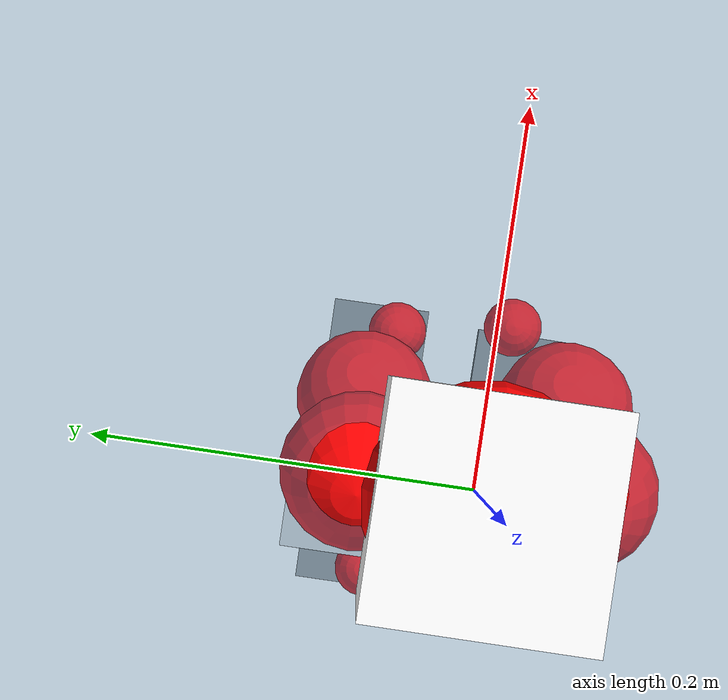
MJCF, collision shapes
<mujoco model="pi_12dof_release_v1">
  <compiler angle="radian" assetdir="assets" balanceinertia="true" inertiafromgeom="false"/>

  <option timestep="0.005" density="1.2" viscosity="2e-05"/>

  <size nkey="1"/>

  <visual>
    <quality shadowsize="8192"/>
    <map shadowclip="0.5"/>
  </visual>

  <default>
    <default class="/">
      <joint armature="0.01" damping="0.01" frictionloss="0.01"/>
      <geom contype="0" conaffinity="0" group="1" solref="-1000 -80"/>
      <site size="0.01 0.005 0.005" group="5"/>
      <general forcelimited="true" biastype="affine" gainprm="20" biasprm="0 -20 -0.5"/>
      <default class="foot">
        <geom size="0.0845 0.036 0.005" type="box" condim="6" group="4" priority="1" friction="0.9 0.2 0.2" solimp="0.015 1 0.005"/>
      </default>
      <default class="reward_collision_sphere">
        <geom group="5" rgba="1 0 0 1"/>
      </default>
    </default>
  </default>

  <asset>
    <texture type="skybox" colorspace="auto" name="//unnamed_texture_0" builtin="gradient" rgb1="0.95 0.95 0.95" rgb2="0.95 0.95 0.95" width="100" height="600"/>
    <texture type="2d" colorspace="auto" name="texplane" builtin="checker" rgb1="0.345 0.575 0.748" rgb2="0.345 0.575 0.748" markrgb="1 1 1" width="512" height="512"/>
    <material name="MatPlane" class="/" texture="texplane" texuniform="true" texrepeat="2 2" specular="0.9"/>
    <mesh name="baselink_1" class="/" file="baselink_1.STL"/>
    <mesh name="r_hip_pitch_link" class="/" file="r_hip_pitch_link.STL"/>
    <mesh name="r_hip_roll_link" class="/" file="r_hip_roll_link.STL"/>
    <mesh name="r_thigh_link" class="/" file="r_thigh_link.STL"/>
    <mesh name="r_calf_link" class="/" file="r_calf_link.STL"/>
    <mesh name="r_ankle_pitch_link" class="/" file="r_ankle_pitch_link.STL"/>
    <mesh name="r_ankle_roll_link" class="/" file="r_ankle_roll_link.STL"/>
    <mesh name="l_hip_pitch_link" class="/" file="l_hip_pitch_link.STL"/>
    <mesh name="l_hip_roll_link" class="/" file="l_hip_roll_link.STL"/>
    <mesh name="l_thigh_link" class="/" file="l_thigh_link.STL"/>
    <mesh name="l_calf_link" class="/" file="l_calf_link.STL"/>
    <mesh name="l_ankle_pitch_link" class="/" file="l_ankle_pitch_link.STL"/>
    <mesh name="l_ankle_roll_link" class="/" file="l_ankle_roll_link.STL"/>
  </asset>

  <worldbody>
    <geom name="floor" class="/" size="100 100 0.125" type="plane" group="0" material="MatPlane"/>
    <light name="toplight_shadow" class="/" pos="0 0 5" dir="0.0990148 0.0990148 -0.990148" type="directional" ambient="0.04 0.04 0.04" diffuse="0.55 0.55 0.55" specular="0.12 0.12 0.12"/>
    <light name="toplight_fill" class="/" pos="0 0 5" dir="0.0990148 0.0990148 -0.990148" type="directional" castshadow="false" ambient="0.04 0.04 0.04" diffuse="0.3 0.3 0.3" specular="0.08 0.08 0.08"/>
    <body name="trunk" pos="-0.00119052 -0.000567122 0.000251659" quat="1 -0.000103054 9.57222e-05 -0.000367871">
      <inertial pos="0.0120482 0.00559996 0.0495546" quat="0.692293 0.00512289 0.0139292 0.721464" mass="2.50115" diaginertia="0.0392387 0.00156298 0.0113449"/>
      <joint name="//unnamed_joint_0" type="free"/>
      <geom name="//unnamed_geom_1" class="/" type="mesh" density="0" rgba="1 1 1 1" mesh="baselink_1"/>
      <geom name="//unnamed_geom_2" class="/" size="0.053803 0.053803 0.053803" pos="0 0 0.0968652" type="box" rgba="1 1 1 1"/>
      <geom name="//unnamed_geom_3" class="reward_collision_sphere" size="0.0591833" pos="0 0 0.0847571"/>
      <site name="imu" class="/" pos="-0.0347348 0.000246524 0.0344665" size="0.0107606"/>
      <camera name="track" class="/" pos="0 -1.40551 0" quat="0.707107 0.707107 0 0" mode="trackcom"/>
      <camera name="ego_camera" class="/" pos="0.0985958 0 0.217947" quat="-0.5 -0.5 0.5 0.5"/>
      <body name="r_hip_pitch_link" pos="0.00405742 -0.0110731 -0.0378737" quat="0.992199 -2.67993e-05 -0.124662 -9.97897e-06">
        <inertial pos="0.000770464 -0.0348178 -0.000356595" quat="-0.0163194 0.706445 -0.029988 0.706944" mass="0.502432" diaginertia="0.000477959 1.98241e-05 0.00023804"/>
        <joint name="r_hip_pitch_joint" class="/" pos="0 0 0" axis="-0.00350509 -0.999927 -0.0115341" range="-1.69538 1.40038" armature="0.0137352" damping="0.0154005" frictionloss="0.0110358"/>
        <geom name="//unnamed_geom_4" class="/" type="mesh" density="0" rgba="0.75294 0.75294 0.75294 1" mesh="r_hip_pitch_link"/>
        <geom name="//unnamed_geom_5" class="/" size="0.00053803 0.00053803 0.00053803" type="box" rgba="0.75294 0.75294 0.75294 1"/>
        <body name="r_hip_roll_link" pos="0.00208158 -0.0473995 -0.000829344" quat="0.999995 -0.00295255 0.000572347 -0.0012244">
          <inertial pos="0.00163957 -0.000112475 -0.0761047" quat="0.718632 -0.0732415 -0.0936187 0.685156" mass="0.492254" diaginertia="0.0012877 5.11533e-05 0.000328393"/>
          <joint name="r_hip_roll_joint" class="/" pos="0 0 0" axis="-0.999797 -0.00984754 -0.0175825" range="-0.0741875 0.50731" armature="0.0122404" damping="0.0407313" frictionloss="0.00679902"/>
          <geom name="//unnamed_geom_6" class="/" type="mesh" density="0" rgba="0.75294 0.75294 0.75294 1" mesh="r_hip_roll_link"/>
          <geom name="//unnamed_geom_7" class="/" size="0.00053803 0.00053803 0.00053803" type="box" rgba="0.75294 0.75294 0.75294 1"/>
          <geom name="//unnamed_geom_8" class="reward_collision_sphere" size="0.0430424"/>
          <body name="r_thigh_link" pos="-0.00559617 -0.00604859 -0.0795526" quat="1 -0.000194079 0.00076855 -6.74569e-05">
            <inertial pos="0.00216882 0.00308789 -0.056584" quat="0.735588 0.677415 -0.00405291 -0.00180689" mass="0.13728" diaginertia="0.000510551 1.62665e-05 0.000150194"/>
            <joint name="r_thigh_joint" class="/" pos="0 0 0" axis="0.000797712 0.00546827 -0.999985" range="-0.227112 0.538568" armature="0.00655768" damping="0" frictionloss="0.0100186"/>
            <geom name="//unnamed_geom_9" class="/" type="mesh" density="0" rgba="0.75294 0.75294 0.75294 1" mesh="r_thigh_link"/>
            <geom name="//unnamed_geom_10" class="/" size="0.00053803 0.00053803 0.00053803" type="box" rgba="0.75294 0.75294 0.75294 1"/>
            <body name="r_calf_link" pos="0.00716273 0.00231586 -0.0838415" quat="0.947604 -0.000289637 0.319448 -0.000313709">
              <inertial pos="0.00228891 0.00834306 -0.0814528" quat="0.999023 0.00735342 0.00330792 0.043459" mass="1.01163" diaginertia="0.0150046 0.000562349 0.000489797"/>
              <joint name="r_calf_joint" class="/" pos="0 0 0" axis="0.00977329 -0.999819 -0.0163128" stiffness="0.0069704" range="-1.64574 0.639403" armature="0.0114644" damping="0" frictionloss="0.0118836"/>
              <geom name="//unnamed_geom_11" class="/" type="mesh" density="0" rgba="0.75294 0.75294 0.75294 1" mesh="r_calf_link"/>
              <geom name="//unnamed_geom_12" class="/" size="0.00053803 0.00053803 0.00053803" type="box" rgba="0.75294 0.75294 0.75294 1"/>
              <geom name="//unnamed_geom_13" class="reward_collision_sphere" size="0.0430424"/>
              <body name="r_ankle_pitch_link" pos="-0.00311245 0.00289449 -0.164334" quat="0.97978 0.00222111 -0.200063 0.000469977">
                <inertial pos="-0.000907766 0.00196522 0.00196122" quat="-0.00188038 0.711764 -0.0106153 0.702336" mass="0.201898" diaginertia="0.00122148 3.96067e-05 0.000278074"/>
                <joint name="r_ankle_pitch_joint" class="/" pos="0 0 0" axis="-0.0131695 -0.999861 -0.0102266" stiffness="0.0166515" range="-1.41877 0.439198" armature="0.00938148" damping="0.0329446" frictionloss="0.00960319"/>
                <geom name="//unnamed_geom_14" class="/" type="mesh" density="0" rgba="0.75294 0.75294 0.75294 1" mesh="r_ankle_pitch_link"/>
                <geom name="//unnamed_geom_15" class="/" size="0.0419664 0.0430424 0.0269015" type="box" rgba="0.75294 0.75294 0.75294 1"/>
                <body name="r_ankle_roll_link" pos="0.100878 0.00725203 3.89891e-05" quat="0.999999 0.000255226 -0.000746478 -0.000710527">
                  <inertial pos="-0.0270679 3.38781e-05 -0.0184849" quat="0.574401 0.399986 0.422916 0.575514" mass="0.592093" diaginertia="0.00416652 0.000168472 0.000693993"/>
                  <joint name="r_ankle_roll_joint" class="/" pos="0 0 0" axis="-0.999962 -0.00598948 -0.00635226" range="-0.211974 0.181356" armature="0.00675945" damping="0" frictionloss="0.0113688"/>
                  <geom name="//unnamed_geom_16" class="/" type="mesh" density="0" rgba="0.75294 0.75294 0.75294 1" mesh="r_ankle_roll_link"/>
                  <geom name="//unnamed_geom_17" class="/" type="mesh" rgba="0.75294 0.75294 0.75294 1" mesh="r_ankle_roll_link"/>
                  <geom name="right_foot" class="foot" size="0.0818149 0.0386851 0.00521401" pos="-0.0670451 0 -0.0532759"/>
                  <geom name="//unnamed_geom_19" class="reward_collision_sphere" size="0.0430424" pos="-0.0657305 0 -0.0242163"/>
                  <geom name="//unnamed_geom_20" class="reward_collision_sphere" size="0.0215212" pos="0.0197192 0.0140551 -0.0484326"/>
                  <geom name="//unnamed_geom_21" class="reward_collision_sphere" size="0.0215212" pos="-0.157753 0.0140551 -0.0484326"/>
                  <site name="right_foot" class="foot" pos="-0.0670451 0 -0.0532759" size="0.0107606"/>
                </body>
              </body>
            </body>
          </body>
        </body>
      </body>
      <body name="l_hip_pitch_link" pos="-0.00593805 0.0201629 -0.0339384" quat="0.992196 -0.000139068 -0.124689 0.000110467">
        <inertial pos="0.00169978 0.0347252 0.00738777" quat="-0.0294095 0.690269 0.0264773 0.72247" mass="0.442289" diaginertia="0.000405594 1.60511e-05 0.000243327"/>
        <joint name="l_hip_pitch_joint" class="/" pos="0 0 0" axis="0.00237548 0.999986 0.00472933" stiffness="0.0140848" range="-1.2034 1.76655" armature="0.0116598" damping="0" frictionloss="0.0124704"/>
        <geom name="//unnamed_geom_22" class="/" type="mesh" density="0" rgba="0.75294 0.75294 0.75294 1" mesh="l_hip_pitch_link"/>
        <geom name="//unnamed_geom_23" class="/" size="0.00053803 0.00053803 0.00053803" type="box" rgba="0.75294 0.75294 0.75294 1"/>
        <body name="l_hip_roll_link" pos="0.00633461 0.0403168 -0.00168346" quat="1 -8.73678e-06 3.4616e-05 0.00027641">
          <inertial pos="0.0062572 0.000599267 -0.0661038" quat="0.697669 -0.0739097 -0.0780815 0.708306" mass="0.508042" diaginertia="0.0015088 4.7505e-05 0.000349472"/>
          <joint name="l_hip_roll_joint" class="/" pos="0 0 0" axis="-0.999954 0.00701658 -0.00653941" range="-0.496007 0.077028" armature="0.0101535" damping="0" frictionloss="0.011862"/>
          <geom name="//unnamed_geom_24" class="/" type="mesh" density="0" rgba="0.75294 0.75294 0.75294 1" mesh="l_hip_roll_link"/>
          <geom name="//unnamed_geom_25" class="/" size="0.00053803 0.00053803 0.00053803" type="box" rgba="0.75294 0.75294 0.75294 1"/>
          <geom name="//unnamed_geom_26" class="reward_collision_sphere" size="0.0430424"/>
          <body name="l_thigh_link" pos="0.00261443 -0.00039531 -0.0845673" quat="1 0.000282299 7.84175e-05 0.000146702">
            <inertial pos="-0.00144782 -0.00688131 -0.0582831" quat="0.6765 0.73632 -0.0107245 0.00809998" mass="0.125691" diaginertia="0.0004533 1.33632e-05 0.000134959"/>
            <joint name="l_thigh_joint" class="/" pos="0 0 0" axis="-0.00376344 -0.00155037 -0.999992" stiffness="0.0266534" range="-0.455697 0.346877" armature="0.0109569" damping="0" frictionloss="0.0111884"/>
            <geom name="//unnamed_geom_27" class="/" type="mesh" density="0" rgba="0.75294 0.75294 0.75294 1" mesh="l_thigh_link"/>
            <geom name="//unnamed_geom_28" class="/" size="0.00053803 0.00053803 0.00053803" type="box" rgba="0.75294 0.75294 0.75294 1"/>
            <body name="l_calf_link" pos="-0.00881624 0.00216293 -0.0865688" quat="0.94711 -0.000237412 0.320908 -0.000138181">
              <inertial pos="0.00261971 0.000630358 -0.076943" quat="0.998834 -0.00323019 -0.038685 0.0287027" mass="1.0487" diaginertia="0.0151724 0.000670039 0.000506881"/>
              <joint name="l_calf_joint" class="/" pos="0 0 0" axis="0.0129379 0.999698 -0.0209081" stiffness="0.00355353" range="-0.654225 1.65565" armature="0.0104028" damping="0.0264225" frictionloss="0.0107756"/>
              <geom name="//unnamed_geom_29" class="/" type="mesh" density="0" rgba="0.75294 0.75294 0.75294 1" mesh="l_calf_link"/>
              <geom name="//unnamed_geom_30" class="/" size="0.00053803 0.00053803 0.00053803" type="box" rgba="0.75294 0.75294 0.75294 1"/>
              <geom name="//unnamed_geom_31" class="reward_collision_sphere" size="0.0430424"/>
              <body name="l_ankle_pitch_link" pos="-0.0077016 0.000694413 -0.162923" quat="0.980501 0.000813353 -0.196511 0.00127984">
                <inertial pos="0.00752983 -0.0028244 0.00126389" quat="-0.000419647 0.708758 0.00298024 0.705445" mass="0.238526" diaginertia="0.00131595 3.82758e-05 0.000313873"/>
                <joint name="l_ankle_pitch_joint" class="/" pos="0 0 0" axis="-0.0036016 0.999977 0.00575939" range="-0.475254 1.36266" armature="0.012211" damping="0.00215332" frictionloss="0.010496"/>
                <geom name="//unnamed_geom_32" class="/" type="mesh" density="0" rgba="0.75294 0.75294 0.75294 1" mesh="l_ankle_pitch_link"/>
                <geom name="//unnamed_geom_33" class="/" size="0.0419664 0.0430424 0.0269015" type="box" rgba="0.75294 0.75294 0.75294 1"/>
                <body name="l_ankle_roll_link" pos="0.101289 -0.00476556 -0.00114273" quat="0.999994 -0.00316742 0.00122752 0.000599642">
                  <inertial pos="-0.0366925 0.000667142 -0.0168698" quat="0.563364 0.440242 0.415033 0.562633" mass="0.623706" diaginertia="0.00444328 0.000176423 0.000742986"/>
                  <joint name="l_ankle_roll_joint" class="/" pos="0 0 0" axis="-0.999999 0.00146362 0.000643817" stiffness="0.0330981" range="-0.26527 0.2202" armature="0.00795941" damping="0" frictionloss="0.0103143"/>
                  <geom name="//unnamed_geom_34" class="/" type="mesh" density="0" rgba="0.75294 0.75294 0.75294 1" mesh="l_ankle_roll_link"/>
                  <geom name="//unnamed_geom_35" class="/" type="mesh" rgba="0.75294 0.75294 0.75294 1" mesh="l_ankle_roll_link"/>
                  <geom name="left_foot" class="foot" size="0.10434 0.0352706 0.00547858" pos="-0.0670451 0 -0.0532759"/>
                  <geom name="//unnamed_geom_37" class="reward_collision_sphere" size="0.0430424" pos="-0.0657305 0 -0.0242163"/>
                  <geom name="//unnamed_geom_38" class="reward_collision_sphere" size="0.0215212" pos="0.0197192 -0.0140551 -0.0484326"/>
                  <geom name="//unnamed_geom_39" class="reward_collision_sphere" size="0.0215212" pos="-0.157753 -0.0140551 -0.0484326"/>
                  <site name="left_foot" class="foot" pos="-0.0670451 0 -0.0532759" size="0.0107606"/>
                </body>
              </body>
            </body>
          </body>
        </body>
      </body>
    </body>
  </worldbody>

  <contact>
    <pair class="/" geom1="floor" geom2="right_foot" name="//unnamed_contact_1"/>
    <pair class="/" geom1="floor" geom2="left_foot" name="//unnamed_contact_0"/>
  </contact>

  <actuator>
    <general name="r_hip_pitch_joint" class="/" joint="r_hip_pitch_joint" forcerange="-18.5295 18.5295" gainprm="26.4053" biasprm="0 -26.4053 -0.589099"/>
    <general name="r_hip_roll_joint" class="/" joint="r_hip_roll_joint" forcerange="-22.1886 22.1886" gainprm="26.4053" biasprm="0 -26.4053 -0.589099"/>
    <general name="r_thigh_joint" class="/" joint="r_thigh_joint" forcerange="-24.496 24.496" gainprm="26.4053" biasprm="0 -26.4053 -0.589099"/>
    <general name="r_calf_joint" class="/" joint="r_calf_joint" forcerange="-16.9012 16.9012" gainprm="26.4053" biasprm="0 -26.4053 -0.589099"/>
    <general name="r_ankle_pitch_joint" class="/" joint="r_ankle_pitch_joint" forcerange="-24.0848 24.0848" gainprm="26.4053" biasprm="0 -26.4053 -0.589099"/>
    <general name="r_ankle_roll_joint" class="/" joint="r_ankle_roll_joint" forcerange="-20.664 20.664" gainprm="26.4053" biasprm="0 -26.4053 -0.589099"/>
    <general name="l_hip_pitch_joint" class="/" joint="l_hip_pitch_joint" forcerange="-26.4591 26.4591" gainprm="26.4053" biasprm="0 -26.4053 -0.589099"/>
    <general name="l_hip_roll_joint" class="/" joint="l_hip_roll_joint" forcerange="-28.9444 28.9444" gainprm="26.4053" biasprm="0 -26.4053 -0.589099"/>
    <general name="l_thigh_joint" class="/" joint="l_thigh_joint" forcerange="-22.2572 22.2572" gainprm="26.4053" biasprm="0 -26.4053 -0.589099"/>
    <general name="l_calf_joint" class="/" joint="l_calf_joint" forcerange="-23.6409 23.6409" gainprm="26.4053" biasprm="0 -26.4053 -0.589099"/>
    <general name="l_ankle_pitch_joint" class="/" joint="l_ankle_pitch_joint" forcerange="-19.5173 19.5173" gainprm="26.4053" biasprm="0 -26.4053 -0.589099"/>
    <general name="l_ankle_roll_joint" class="/" joint="l_ankle_roll_joint" forcerange="-21.0183 21.0183" gainprm="26.4053" biasprm="0 -26.4053 -0.589099"/>
  </actuator>

  <sensor>
    <gyro site="imu" name="imu_angular_velocity"/>
    <velocimeter site="imu" name="imu_linear_velocity"/>
    <framelinvel objtype="site" objname="left_foot" name="left_foot_global_linear_velocity"/>
    <framelinvel objtype="site" objname="right_foot" name="right_foot_global_linear_velocity"/>
  </sensor>

  <keyframe>
    <key name="home" qpos="0 0 0.291 1 0 0 0 0.4 0 0 -0.8 0.4 0 -0.4 0 0 0.8 -0.4 0"/>
  </keyframe>
</mujoco>
